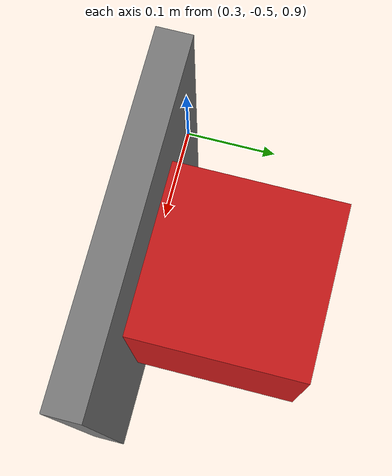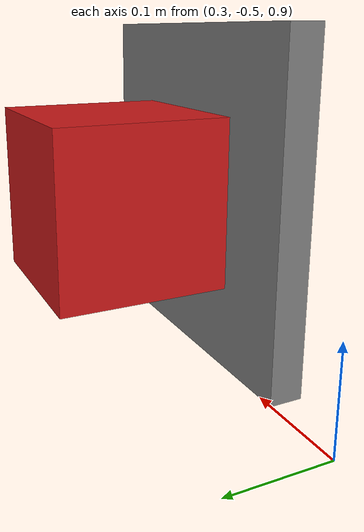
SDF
<?xml version="1.0" ?>
<sdf version="1.6">
  <world name="default">
    <scene>
      <background>0.8117 0.8705 0.8784 1</background>
    </scene>

    <!-- Ground plane -->
    <model name="ground_plane">
      <static>true</static>
      <pose>0 0 0 0 0 0</pose>
      <link name="link">
        <collision name="collision">
          <geometry>
            <plane>
              <normal>0 0 1</normal>
              <size>100 100</size>
            </plane>
          </geometry>
          <surface>
            <friction><ode><mu>100</mu><mu2>50</mu2></ode></friction>
          </surface>
        </collision>
        <visual name="visual">
          <cast_shadows>false</cast_shadows>
          <geometry>
            <plane>
              <normal>0 0 1</normal>
              <size>100 100</size>
            </plane>
          </geometry>
          <material>
            <ambient>0.8117 0.8705 0.8784 1</ambient>
            <diffuse>0.8117 0.8705 0.8784 1</diffuse>
          </material>
        </visual>
      </link>
    </model>

    <include><uri>model://sun</uri></include>

    <physics type='ode'>
      <max_step_size>0.001</max_step_size>
      <real_time_factor>1</real_time_factor>
      <real_time_update_rate>0</real_time_update_rate>
      <gravity>0 0 -9.8</gravity>
    </physics>

    <!-- Red target box — static, centre at (0.5, -0.4, 1.075) -->
    <model name="target_box">
      <pose>0.5 -0.4 1.075 0 0 0</pose>
      <static>1</static>
      <link name="link">
        <gravity>0</gravity>
        <collision name="collision">
          <geometry>
            <box><size>0.15 0.15 0.15</size></box>
          </geometry>
          <max_contacts>10</max_contacts>
          <surface>
            <contact><ode/></contact>
            <bounce/>
            <friction><ode/></friction>
          </surface>
        </collision>
        <visual name="visual">
          <geometry>
            <box><size>0.15 0.15 0.15</size></box>
          </geometry>
          <material>
            <!-- Red: matches color_segmentation() HSV [0,50,50]-[10,255,255] -->
            <ambient>0.8 0.1 0.1 1</ambient>
            <diffuse>0.8 0.1 0.1 1</diffuse>
            <specular>0.1 0.1 0.1 1</specular>
            <emissive>0 0 0 0</emissive>
          </material>
        </visual>
        <velocity_decay><linear>0</linear><angular>0</angular></velocity_decay>
        <self_collide>0</self_collide>
        <kinematic>0</kinematic>
        <gravity>0</gravity>
      </link>
    </model>

    <!-- Grey wall — flush against the back face of target_box -->
    <model name="wall">
      <pose>0.5 -0.490 1.075 0 0 0</pose>
      <static>1</static>
      <link name="link">
        <gravity>0</gravity>
        <collision name="collision">
          <geometry>
            <box><size>0.30 0.03 0.30</size></box>
          </geometry>
          <max_contacts>10</max_contacts>
          <surface>
            <contact><ode/></contact>
            <bounce/>
            <friction><ode/></friction>
          </surface>
        </collision>
        <visual name="visual">
          <geometry>
            <box><size>0.30 0.03 0.30</size></box>
          </geometry>
          <material>
            <ambient>0.5 0.5 0.5 1</ambient>
            <diffuse>0.5 0.5 0.5 1</diffuse>
            <specular>0.1 0.1 0.1 1</specular>
            <emissive>0 0 0 0</emissive>
          </material>
        </visual>
        <velocity_decay><linear>0</linear><angular>0</angular></velocity_decay>
        <self_collide>0</self_collide>
        <kinematic>0</kinematic>
        <gravity>0</gravity>
      </link>
    </model>

  </world>
</sdf>
